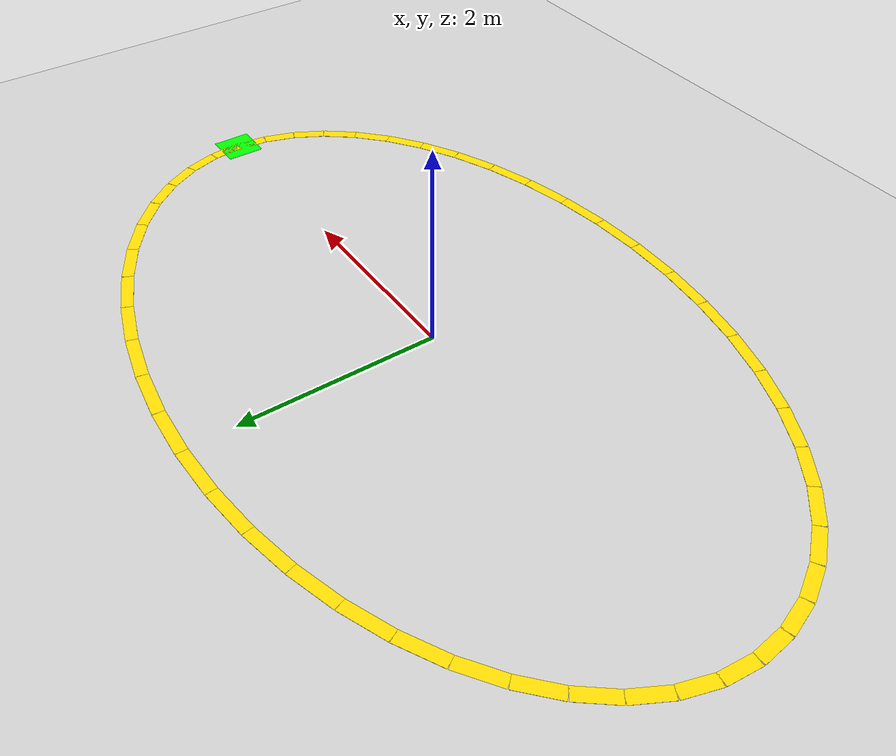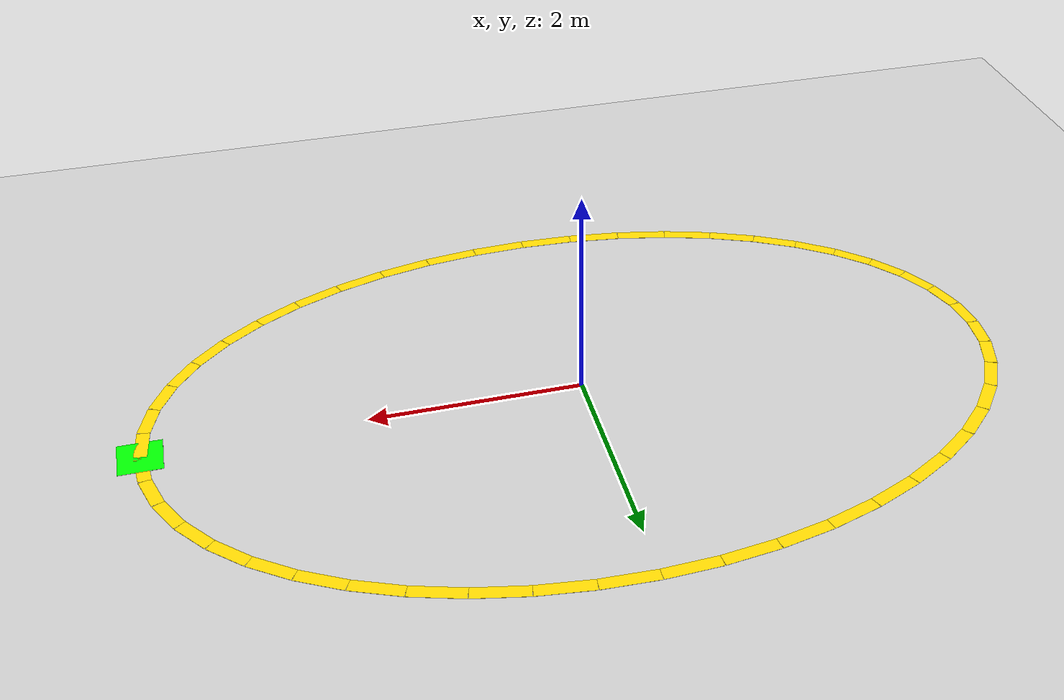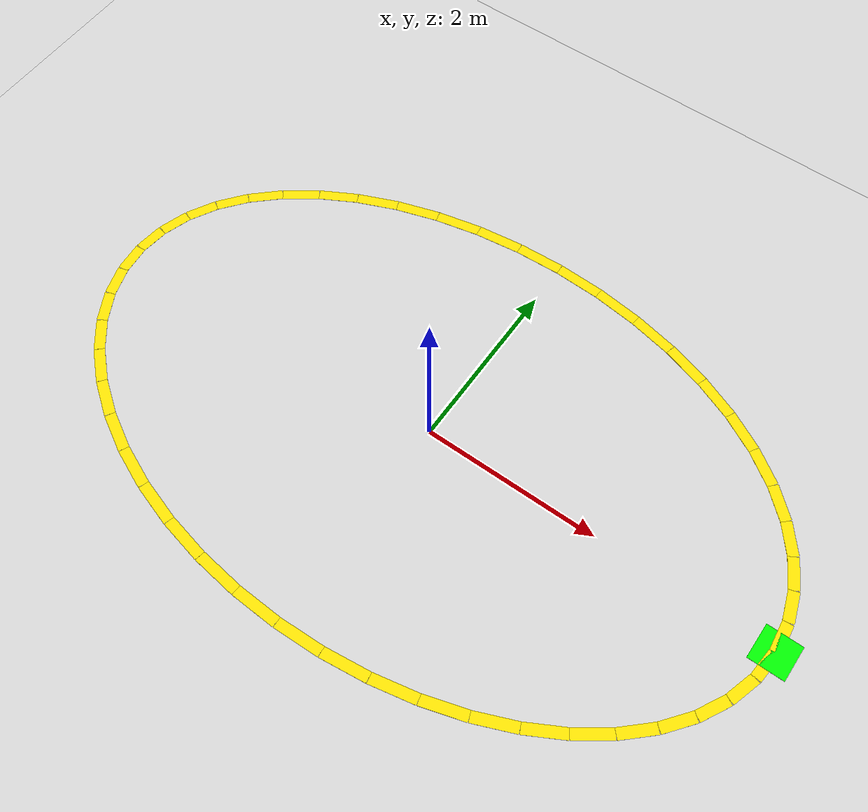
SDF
<?xml version="1.0" ?>
<sdf version="1.6">
  <world name="default">
    <light name="sun" type="directional">
      <cast_shadows>1</cast_shadows>
      <pose>0 0 10 0 0 0</pose>
      <diffuse>0.8 0.8 0.8 1</diffuse>
      <specular>0.1 0.1 0.1 1</specular>
      <attenuation>
        <range>1000</range>
        <constant>0.9</constant>
        <linear>0.01</linear>
        <quadratic>0.001</quadratic>
      </attenuation>
      <direction>-0.5 0.5 -1</direction>
    </light>
    <model name="ground_plane">
      <static>1</static>
      <link name="link">
        <collision name="collision">
          <geometry><plane><normal>0 0 1</normal><size>100 100</size></plane></geometry>
          <surface><friction><ode><mu>100</mu><mu2>50</mu2></ode></friction></surface>
        </collision>
        <visual name="visual">
          <cast_shadows>0</cast_shadows>
          <geometry><plane><normal>0 0 1</normal><size>100 100</size></plane></geometry>
          <material><script>
            <uri>file://media/materials/scripts/gazebo.material</uri>
            <name>Gazebo/Grey</name>
          </script></material>
        </visual>
      </link>
    </model>
    <gravity>0 0 -9.8</gravity>
    <physics name="default_physics" default="0" type="ode">
      <max_step_size>0.001</max_step_size>
      <real_time_factor>1</real_time_factor>
      <real_time_update_rate>1000</real_time_update_rate>
    </physics>

    <model name="elips_0">
      <static>true</static>
      <pose>3.9829 0.1632 -0.001 0 0 1.6753</pose>
      <link name="link">
        <visual name="visual">
          <geometry><box><size>0.3281 0.12 0.002</size></box></geometry>
          <material><ambient>1 0.85 0 1</ambient><diffuse>1 0.85 0 1</diffuse></material>
        </visual>
      </link>
    </model>
    <model name="elips_1">
      <static>true</static>
      <pose>3.9147 0.4867 -0.001 0 0 1.8789</pose>
      <link name="link">
        <visual name="visual">
          <geometry><box><size>0.3366 0.12 0.002</size></box></geometry>
          <material><ambient>1 0.85 0 1</ambient><diffuse>1 0.85 0 1</diffuse></material>
        </visual>
      </link>
    </model>
    <model name="elips_2">
      <static>true</static>
      <pose>3.7796 0.8019 -0.001 0 0 2.0683</pose>
      <link name="link">
        <visual name="visual">
          <geometry><box><size>0.3524 0.12 0.002</size></box></geometry>
          <material><ambient>1 0.85 0 1</ambient><diffuse>1 0.85 0 1</diffuse></material>
        </visual>
      </link>
    </model>
    <model name="elips_3">
      <static>true</static>
      <pose>3.5798 1.1034 -0.001 0 0 2.2388</pose>
      <link name="link">
        <visual name="visual">
          <geometry><box><size>0.3736 0.12 0.002</size></box></geometry>
          <material><ambient>1 0.85 0 1</ambient><diffuse>1 0.85 0 1</diffuse></material>
        </visual>
      </link>
    </model>
    <model name="elips_4">
      <static>true</static>
      <pose>3.3188 1.3860 -0.001 0 0 2.3896</pose>
      <link name="link">
        <visual name="visual">
          <geometry><box><size>0.3980 0.12 0.002</size></box></geometry>
          <material><ambient>1 0.85 0 1</ambient><diffuse>1 0.85 0 1</diffuse></material>
        </visual>
      </link>
    </model>
    <model name="elips_5">
      <static>true</static>
      <pose>3.0009 1.6448 -0.001 0 0 2.5224</pose>
      <link name="link">
        <visual name="visual">
          <geometry><box><size>0.4236 0.12 0.002</size></box></geometry>
          <material><ambient>1 0.85 0 1</ambient><diffuse>1 0.85 0 1</diffuse></material>
        </visual>
      </link>
    </model>
    <model name="elips_6">
      <static>true</static>
      <pose>2.6317 1.8756 -0.001 0 0 2.6402</pose>
      <link name="link">
        <visual name="visual">
          <geometry><box><size>0.4486 0.12 0.002</size></box></geometry>
          <material><ambient>1 0.85 0 1</ambient><diffuse>1 0.85 0 1</diffuse></material>
        </visual>
      </link>
    </model>
    <model name="elips_7">
      <static>true</static>
      <pose>2.2175 2.0742 -0.001 0 0 2.7460</pose>
      <link name="link">
        <visual name="visual">
          <geometry><box><size>0.4715 0.12 0.002</size></box></geometry>
          <material><ambient>1 0.85 0 1</ambient><diffuse>1 0.85 0 1</diffuse></material>
        </visual>
      </link>
    </model>
    <model name="elips_8">
      <static>true</static>
      <pose>1.7654 2.2374 -0.001 0 0 2.8426</pose>
      <link name="link">
        <visual name="visual">
          <geometry><box><size>0.4911 0.12 0.002</size></box></geometry>
          <material><ambient>1 0.85 0 1</ambient><diffuse>1 0.85 0 1</diffuse></material>
        </visual>
      </link>
    </model>
    <model name="elips_9">
      <static>true</static>
      <pose>1.2830 2.3623 -0.001 0 0 2.9325</pose>
      <link name="link">
        <visual name="visual">
          <geometry><box><size>0.5065 0.12 0.002</size></box></geometry>
          <material><ambient>1 0.85 0 1</ambient><diffuse>1 0.85 0 1</diffuse></material>
        </visual>
      </link>
    </model>
    <model name="elips_10">
      <static>true</static>
      <pose>0.7787 2.4467 -0.001 0 0 3.0179</pose>
      <link name="link">
        <visual name="visual">
          <geometry><box><size>0.5171 0.12 0.002</size></box></geometry>
          <material><ambient>1 0.85 0 1</ambient><diffuse>1 0.85 0 1</diffuse></material>
        </visual>
      </link>
    </model>
    <model name="elips_11">
      <static>true</static>
      <pose>0.2611 2.4893 -0.001 0 0 3.1007</pose>
      <link name="link">
        <visual name="visual">
          <geometry><box><size>0.5225 0.12 0.002</size></box></geometry>
          <material><ambient>1 0.85 0 1</ambient><diffuse>1 0.85 0 1</diffuse></material>
        </visual>
      </link>
    </model>
    <model name="elips_12">
      <static>true</static>
      <pose>-0.2611 2.4893 -0.001 0 0 -3.1007</pose>
      <link name="link">
        <visual name="visual">
          <geometry><box><size>0.5225 0.12 0.002</size></box></geometry>
          <material><ambient>1 0.85 0 1</ambient><diffuse>1 0.85 0 1</diffuse></material>
        </visual>
      </link>
    </model>
    <model name="elips_13">
      <static>true</static>
      <pose>-0.7787 2.4467 -0.001 0 0 -3.0179</pose>
      <link name="link">
        <visual name="visual">
          <geometry><box><size>0.5171 0.12 0.002</size></box></geometry>
          <material><ambient>1 0.85 0 1</ambient><diffuse>1 0.85 0 1</diffuse></material>
        </visual>
      </link>
    </model>
    <model name="elips_14">
      <static>true</static>
      <pose>-1.2830 2.3623 -0.001 0 0 -2.9325</pose>
      <link name="link">
        <visual name="visual">
          <geometry><box><size>0.5065 0.12 0.002</size></box></geometry>
          <material><ambient>1 0.85 0 1</ambient><diffuse>1 0.85 0 1</diffuse></material>
        </visual>
      </link>
    </model>
    <model name="elips_15">
      <static>true</static>
      <pose>-1.7654 2.2374 -0.001 0 0 -2.8426</pose>
      <link name="link">
        <visual name="visual">
          <geometry><box><size>0.4911 0.12 0.002</size></box></geometry>
          <material><ambient>1 0.85 0 1</ambient><diffuse>1 0.85 0 1</diffuse></material>
        </visual>
      </link>
    </model>
    <model name="elips_16">
      <static>true</static>
      <pose>-2.2175 2.0742 -0.001 0 0 -2.7460</pose>
      <link name="link">
        <visual name="visual">
          <geometry><box><size>0.4715 0.12 0.002</size></box></geometry>
          <material><ambient>1 0.85 0 1</ambient><diffuse>1 0.85 0 1</diffuse></material>
        </visual>
      </link>
    </model>
    <model name="elips_17">
      <static>true</static>
      <pose>-2.6317 1.8756 -0.001 0 0 -2.6402</pose>
      <link name="link">
        <visual name="visual">
          <geometry><box><size>0.4486 0.12 0.002</size></box></geometry>
          <material><ambient>1 0.85 0 1</ambient><diffuse>1 0.85 0 1</diffuse></material>
        </visual>
      </link>
    </model>
    <model name="elips_18">
      <static>true</static>
      <pose>-3.0009 1.6448 -0.001 0 0 -2.5224</pose>
      <link name="link">
        <visual name="visual">
          <geometry><box><size>0.4236 0.12 0.002</size></box></geometry>
          <material><ambient>1 0.85 0 1</ambient><diffuse>1 0.85 0 1</diffuse></material>
        </visual>
      </link>
    </model>
    <model name="elips_19">
      <static>true</static>
      <pose>-3.3188 1.3860 -0.001 0 0 -2.3896</pose>
      <link name="link">
        <visual name="visual">
          <geometry><box><size>0.3980 0.12 0.002</size></box></geometry>
          <material><ambient>1 0.85 0 1</ambient><diffuse>1 0.85 0 1</diffuse></material>
        </visual>
      </link>
    </model>
    <model name="elips_20">
      <static>true</static>
      <pose>-3.5798 1.1034 -0.001 0 0 -2.2388</pose>
      <link name="link">
        <visual name="visual">
          <geometry><box><size>0.3736 0.12 0.002</size></box></geometry>
          <material><ambient>1 0.85 0 1</ambient><diffuse>1 0.85 0 1</diffuse></material>
        </visual>
      </link>
    </model>
    <model name="elips_21">
      <static>true</static>
      <pose>-3.7796 0.8019 -0.001 0 0 -2.0683</pose>
      <link name="link">
        <visual name="visual">
          <geometry><box><size>0.3524 0.12 0.002</size></box></geometry>
          <material><ambient>1 0.85 0 1</ambient><diffuse>1 0.85 0 1</diffuse></material>
        </visual>
      </link>
    </model>
    <model name="elips_22">
      <static>true</static>
      <pose>-3.9147 0.4867 -0.001 0 0 -1.8789</pose>
      <link name="link">
        <visual name="visual">
          <geometry><box><size>0.3366 0.12 0.002</size></box></geometry>
          <material><ambient>1 0.85 0 1</ambient><diffuse>1 0.85 0 1</diffuse></material>
        </visual>
      </link>
    </model>
    <model name="elips_23">
      <static>true</static>
      <pose>-3.9829 0.1632 -0.001 0 0 -1.6753</pose>
      <link name="link">
        <visual name="visual">
          <geometry><box><size>0.3281 0.12 0.002</size></box></geometry>
          <material><ambient>1 0.85 0 1</ambient><diffuse>1 0.85 0 1</diffuse></material>
        </visual>
      </link>
    </model>
    <model name="elips_24">
      <static>true</static>
      <pose>-3.9829 -0.1632 -0.001 0 0 -1.4663</pose>
      <link name="link">
        <visual name="visual">
          <geometry><box><size>0.3281 0.12 0.002</size></box></geometry>
          <material><ambient>1 0.85 0 1</ambient><diffuse>1 0.85 0 1</diffuse></material>
        </visual>
      </link>
    </model>
    <model name="elips_25">
      <static>true</static>
      <pose>-3.9147 -0.4867 -0.001 0 0 -1.2627</pose>
      <link name="link">
        <visual name="visual">
          <geometry><box><size>0.3366 0.12 0.002</size></box></geometry>
          <material><ambient>1 0.85 0 1</ambient><diffuse>1 0.85 0 1</diffuse></material>
        </visual>
      </link>
    </model>
    <model name="elips_26">
      <static>true</static>
      <pose>-3.7796 -0.8019 -0.001 0 0 -1.0732</pose>
      <link name="link">
        <visual name="visual">
          <geometry><box><size>0.3524 0.12 0.002</size></box></geometry>
          <material><ambient>1 0.85 0 1</ambient><diffuse>1 0.85 0 1</diffuse></material>
        </visual>
      </link>
    </model>
    <model name="elips_27">
      <static>true</static>
      <pose>-3.5798 -1.1034 -0.001 0 0 -0.9028</pose>
      <link name="link">
        <visual name="visual">
          <geometry><box><size>0.3736 0.12 0.002</size></box></geometry>
          <material><ambient>1 0.85 0 1</ambient><diffuse>1 0.85 0 1</diffuse></material>
        </visual>
      </link>
    </model>
    <model name="elips_28">
      <static>true</static>
      <pose>-3.3188 -1.3860 -0.001 0 0 -0.7520</pose>
      <link name="link">
        <visual name="visual">
          <geometry><box><size>0.3980 0.12 0.002</size></box></geometry>
          <material><ambient>1 0.85 0 1</ambient><diffuse>1 0.85 0 1</diffuse></material>
        </visual>
      </link>
    </model>
    <model name="elips_29">
      <static>true</static>
      <pose>-3.0009 -1.6448 -0.001 0 0 -0.6192</pose>
      <link name="link">
        <visual name="visual">
          <geometry><box><size>0.4236 0.12 0.002</size></box></geometry>
          <material><ambient>1 0.85 0 1</ambient><diffuse>1 0.85 0 1</diffuse></material>
        </visual>
      </link>
    </model>
    <model name="elips_30">
      <static>true</static>
      <pose>-2.6317 -1.8756 -0.001 0 0 -0.5014</pose>
      <link name="link">
        <visual name="visual">
          <geometry><box><size>0.4486 0.12 0.002</size></box></geometry>
          <material><ambient>1 0.85 0 1</ambient><diffuse>1 0.85 0 1</diffuse></material>
        </visual>
      </link>
    </model>
    <model name="elips_31">
      <static>true</static>
      <pose>-2.2175 -2.0742 -0.001 0 0 -0.3956</pose>
      <link name="link">
        <visual name="visual">
          <geometry><box><size>0.4715 0.12 0.002</size></box></geometry>
          <material><ambient>1 0.85 0 1</ambient><diffuse>1 0.85 0 1</diffuse></material>
        </visual>
      </link>
    </model>
    <model name="elips_32">
      <static>true</static>
      <pose>-1.7654 -2.2374 -0.001 0 0 -0.2990</pose>
      <link name="link">
        <visual name="visual">
          <geometry><box><size>0.4911 0.12 0.002</size></box></geometry>
          <material><ambient>1 0.85 0 1</ambient><diffuse>1 0.85 0 1</diffuse></material>
        </visual>
      </link>
    </model>
    <model name="elips_33">
      <static>true</static>
      <pose>-1.2830 -2.3623 -0.001 0 0 -0.2091</pose>
      <link name="link">
        <visual name="visual">
          <geometry><box><size>0.5065 0.12 0.002</size></box></geometry>
          <material><ambient>1 0.85 0 1</ambient><diffuse>1 0.85 0 1</diffuse></material>
        </visual>
      </link>
    </model>
    <model name="elips_34">
      <static>true</static>
      <pose>-0.7787 -2.4467 -0.001 0 0 -0.1237</pose>
      <link name="link">
        <visual name="visual">
          <geometry><box><size>0.5171 0.12 0.002</size></box></geometry>
          <material><ambient>1 0.85 0 1</ambient><diffuse>1 0.85 0 1</diffuse></material>
        </visual>
      </link>
    </model>
    <model name="elips_35">
      <static>true</static>
      <pose>-0.2611 -2.4893 -0.001 0 0 -0.0409</pose>
      <link name="link">
        <visual name="visual">
          <geometry><box><size>0.5225 0.12 0.002</size></box></geometry>
          <material><ambient>1 0.85 0 1</ambient><diffuse>1 0.85 0 1</diffuse></material>
        </visual>
      </link>
    </model>
    <model name="elips_36">
      <static>true</static>
      <pose>0.2611 -2.4893 -0.001 0 0 0.0409</pose>
      <link name="link">
        <visual name="visual">
          <geometry><box><size>0.5225 0.12 0.002</size></box></geometry>
          <material><ambient>1 0.85 0 1</ambient><diffuse>1 0.85 0 1</diffuse></material>
        </visual>
      </link>
    </model>
    <model name="elips_37">
      <static>true</static>
      <pose>0.7787 -2.4467 -0.001 0 0 0.1237</pose>
      <link name="link">
        <visual name="visual">
          <geometry><box><size>0.5171 0.12 0.002</size></box></geometry>
          <material><ambient>1 0.85 0 1</ambient><diffuse>1 0.85 0 1</diffuse></material>
        </visual>
      </link>
    </model>
    <model name="elips_38">
      <static>true</static>
      <pose>1.2830 -2.3623 -0.001 0 0 0.2091</pose>
      <link name="link">
        <visual name="visual">
          <geometry><box><size>0.5065 0.12 0.002</size></box></geometry>
          <material><ambient>1 0.85 0 1</ambient><diffuse>1 0.85 0 1</diffuse></material>
        </visual>
      </link>
    </model>
    <model name="elips_39">
      <static>true</static>
      <pose>1.7654 -2.2374 -0.001 0 0 0.2990</pose>
      <link name="link">
        <visual name="visual">
          <geometry><box><size>0.4911 0.12 0.002</size></box></geometry>
          <material><ambient>1 0.85 0 1</ambient><diffuse>1 0.85 0 1</diffuse></material>
        </visual>
      </link>
    </model>
    <model name="elips_40">
      <static>true</static>
      <pose>2.2175 -2.0742 -0.001 0 0 0.3956</pose>
      <link name="link">
        <visual name="visual">
          <geometry><box><size>0.4715 0.12 0.002</size></box></geometry>
          <material><ambient>1 0.85 0 1</ambient><diffuse>1 0.85 0 1</diffuse></material>
        </visual>
      </link>
    </model>
    <model name="elips_41">
      <static>true</static>
      <pose>2.6317 -1.8756 -0.001 0 0 0.5014</pose>
      <link name="link">
        <visual name="visual">
          <geometry><box><size>0.4486 0.12 0.002</size></box></geometry>
          <material><ambient>1 0.85 0 1</ambient><diffuse>1 0.85 0 1</diffuse></material>
        </visual>
      </link>
    </model>
    <model name="elips_42">
      <static>true</static>
      <pose>3.0009 -1.6448 -0.001 0 0 0.6192</pose>
      <link name="link">
        <visual name="visual">
          <geometry><box><size>0.4236 0.12 0.002</size></box></geometry>
          <material><ambient>1 0.85 0 1</ambient><diffuse>1 0.85 0 1</diffuse></material>
        </visual>
      </link>
    </model>
    <model name="elips_43">
      <static>true</static>
      <pose>3.3188 -1.3860 -0.001 0 0 0.7520</pose>
      <link name="link">
        <visual name="visual">
          <geometry><box><size>0.3980 0.12 0.002</size></box></geometry>
          <material><ambient>1 0.85 0 1</ambient><diffuse>1 0.85 0 1</diffuse></material>
        </visual>
      </link>
    </model>
    <model name="elips_44">
      <static>true</static>
      <pose>3.5798 -1.1034 -0.001 0 0 0.9028</pose>
      <link name="link">
        <visual name="visual">
          <geometry><box><size>0.3736 0.12 0.002</size></box></geometry>
          <material><ambient>1 0.85 0 1</ambient><diffuse>1 0.85 0 1</diffuse></material>
        </visual>
      </link>
    </model>
    <model name="elips_45">
      <static>true</static>
      <pose>3.7796 -0.8019 -0.001 0 0 1.0732</pose>
      <link name="link">
        <visual name="visual">
          <geometry><box><size>0.3524 0.12 0.002</size></box></geometry>
          <material><ambient>1 0.85 0 1</ambient><diffuse>1 0.85 0 1</diffuse></material>
        </visual>
      </link>
    </model>
    <model name="elips_46">
      <static>true</static>
      <pose>3.9147 -0.4867 -0.001 0 0 1.2627</pose>
      <link name="link">
        <visual name="visual">
          <geometry><box><size>0.3366 0.12 0.002</size></box></geometry>
          <material><ambient>1 0.85 0 1</ambient><diffuse>1 0.85 0 1</diffuse></material>
        </visual>
      </link>
    </model>
    <model name="elips_47">
      <static>true</static>
      <pose>3.9829 -0.1632 -0.001 0 0 1.4663</pose>
      <link name="link">
        <visual name="visual">
          <geometry><box><size>0.3281 0.12 0.002</size></box></geometry>
          <material><ambient>1 0.85 0 1</ambient><diffuse>1 0.85 0 1</diffuse></material>
        </visual>
      </link>
    </model>
    <model name="start_point">
      <static>true</static>
      <pose>4.0 0.0 -0.001 0 0 0</pose>
      <link name="link">
        <visual name="visual">
          <geometry><box><size>0.4 0.4 0.002</size></box></geometry>
          <material><ambient>0 1 0 1</ambient><diffuse>0 1 0 1</diffuse></material>
        </visual>
      </link>
    </model>
  </world>
</sdf>
